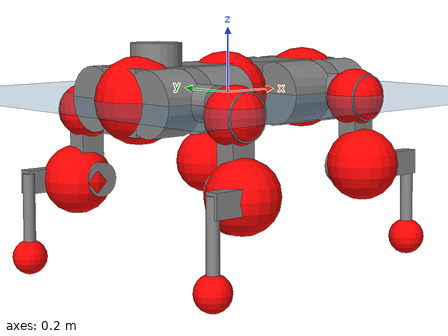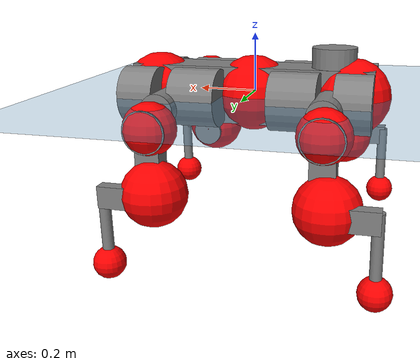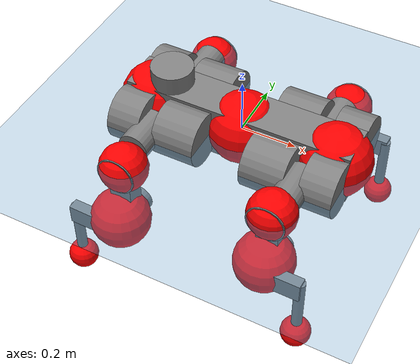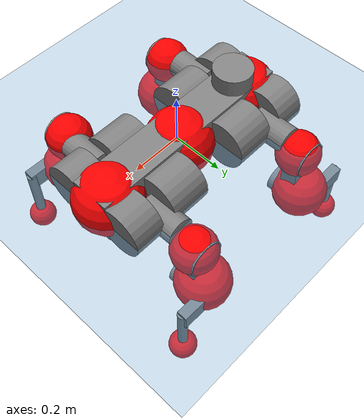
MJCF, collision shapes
<mujoco model="anymal_c">
  <compiler angle="radian" assetdir="assets" balanceinertia="true" inertiafromgeom="false"/>

  <option timestep="0.005" density="1.2" viscosity="2e-05"/>

  <size nkey="1"/>

  <visual>
    <quality shadowsize="8192"/>
    <map shadowclip="0.5"/>
  </visual>

  <default>
    <default class="/">
      <material specular="0" shininess="0.25"/>
      <geom contype="0" conaffinity="0" group="1" solref="-1000 -80"/>
      <site size="0.01 0.005 0.005" group="5"/>
      <general forcelimited="true" forcerange="-80 80" biastype="affine" gainprm="80" biasprm="0 -80 -2"/>
      <default class="anymal_c">
        <joint armature="0.01" damping="0.01" frictionloss="0.1"/>
        <default class="visual">
          <geom type="mesh" group="2"/>
          <default class="visual_zflip"/>
        </default>
        <default class="collision">
          <geom type="cylinder" group="3"/>
          <default class="foot">
            <geom size="0.03 0 0" type="sphere" condim="6" priority="1" friction="0.8 0.02 0.01" solimp="0.015 1 0.03"/>
          </default>
        </default>
      </default>
      <default class="reward_collision_sphere">
        <geom group="5" rgba="1 0 0 1"/>
      </default>
    </default>
  </default>

  <asset>
    <texture type="skybox" colorspace="auto" name="//unnamed_texture_0" builtin="gradient" rgb1="0.95 0.95 0.95" rgb2="0.95 0.95 0.95" width="100" height="600"/>
    <texture type="2d" colorspace="auto" name="texplane" builtin="checker" rgb1="0.345 0.575 0.748" rgb2="0.345 0.575 0.748" markrgb="1 1 1" width="512" height="512"/>
    <texture type="2d" colorspace="linear" name="base" file="base.png"/>
    <texture type="2d" colorspace="linear" name="top_shell" file="top_shell.png"/>
    <texture type="2d" colorspace="linear" name="bottom_shell" file="bottom_shell.png"/>
    <texture type="2d" colorspace="linear" name="remote" file="remote.png"/>
    <texture type="2d" colorspace="linear" name="hatch" file="hatch.png"/>
    <texture type="2d" colorspace="linear" name="handle" file="handle.png"/>
    <texture type="2d" colorspace="linear" name="face" file="face.png"/>
    <texture type="2d" colorspace="linear" name="battery" file="battery.png"/>
    <texture type="2d" colorspace="linear" name="lidar_cage" file="lidar_cage.png"/>
    <texture type="2d" colorspace="linear" name="depth_camera" file="depth_camera.png"/>
    <texture type="2d" colorspace="linear" name="wide_angle_camera" file="wide_angle_camera.png"/>
    <texture type="2d" colorspace="linear" name="lidar" file="lidar.png"/>
    <texture type="2d" colorspace="linear" name="drive" file="drive.png"/>
    <texture type="2d" colorspace="linear" name="hip_l" file="hip_l.png"/>
    <texture type="2d" colorspace="linear" name="shank_l" file="shank_l.png"/>
    <texture type="2d" colorspace="linear" name="foot" file="foot.png"/>
    <texture type="2d" colorspace="linear" name="thigh" file="thigh.png"/>
    <texture type="2d" colorspace="linear" name="shank_r" file="shank_r.png"/>
    <texture type="2d" colorspace="linear" name="hip_r" file="hip_r.png"/>
    <material name="MatPlane" class="/" texture="texplane" texuniform="true" texrepeat="2 2" specular="0.9" shininess="0.5"/>
    <material name="black_plastic" class="/" rgba="0.007 0.007 0.007 1"/>
    <material name="green" class="/" rgba="0.052 0.178 0.033 1"/>
    <material name="red" class="/" rgba="0.178 0.006 0.005 1"/>
    <material name="yellow" class="/" rgba="0.178 0.119 0.006 1"/>
    <material name="lwl" class="/" rgba="0.8 0.8 0.8 1"/>
    <material name="base" class="/" texture="base"/>
    <material name="top_shell" class="/" texture="top_shell"/>
    <material name="bottom_shell" class="/" texture="bottom_shell"/>
    <material name="hip_l" class="/" texture="hip_l"/>
    <material name="thigh" class="/" texture="thigh"/>
    <material name="shank_l" class="/" texture="shank_l"/>
    <material name="foot" class="/" texture="foot"/>
    <material name="hip_r" class="/" texture="hip_r"/>
    <material name="shank" class="/" texture="shank_r"/>
    <material name="hatch" class="/" texture="hatch"/>
    <material name="remote" class="/" texture="remote"/>
    <material name="handle" class="/" texture="handle"/>
    <material name="face" class="/" texture="face"/>
    <material name="depth_camera" class="/" texture="depth_camera"/>
    <material name="wide_angle_camera" class="/" texture="wide_angle_camera"/>
    <material name="battery" class="/" texture="battery"/>
    <material name="lidar_cage" class="/" texture="lidar_cage"/>
    <material name="lidar" class="/" texture="lidar"/>
    <material name="drive" class="/" texture="drive"/>
    <mesh name="base_0" class="/" file="base_0.obj"/>
    <mesh name="base_1" class="/" file="base_1.obj"/>
    <mesh name="base_2" class="/" file="base_2.obj"/>
    <mesh name="base_3" class="/" file="base_3.obj"/>
    <mesh name="base_4" class="/" file="base_4.obj"/>
    <mesh name="base_5" class="/" file="base_5.obj"/>
    <mesh name="top_shell" class="/" file="top_shell.obj"/>
    <mesh name="bottom_shell" class="/" file="bottom_shell.obj"/>
    <mesh name="remote" class="/" file="remote.obj"/>
    <mesh name="handle" class="/" file="handle.obj"/>
    <mesh name="face" class="/" file="face.obj"/>
    <mesh name="wide_angle_camera" class="/" file="wide_angle_camera.obj"/>
    <mesh name="depth_camera" class="/" file="depth_camera.obj"/>
    <mesh name="battery" class="/" file="battery.obj"/>
    <mesh name="lidar_cage" class="/" file="lidar_cage.obj"/>
    <mesh name="lidar" class="/" file="lidar.obj"/>
    <mesh name="drive" class="/" file="drive.obj"/>
    <mesh name="hip_l" class="/" file="hip_l.obj"/>
    <mesh name="thigh" class="/" file="thigh.obj"/>
    <mesh name="shank_l" class="/" file="shank_l.obj"/>
    <mesh name="foot" class="/" file="foot.obj"/>
    <mesh name="hip_r" class="/" file="hip_r.obj"/>
    <mesh name="hatch" class="/" file="hatch.obj"/>
    <mesh name="shank_r" class="/" file="shank_r.obj"/>
  </asset>

  <worldbody>
    <geom name="floor" class="/" size="100 100 0.125" type="plane" group="0" material="MatPlane"/>
    <light name="toplight_shadow" class="/" pos="0 0 5" dir="0.0990148 0.0990148 -0.990148" type="directional" ambient="0.04 0.04 0.04" diffuse="0.55 0.55 0.55" specular="0.12 0.12 0.12"/>
    <light name="toplight_fill" class="/" pos="0 0 5" dir="0.0990148 0.0990148 -0.990148" type="directional" castshadow="false" ambient="0.04 0.04 0.04" diffuse="0.3 0.3 0.3" specular="0.08 0.08 0.08"/>
    <body name="trunk" childclass="anymal_c" pos="0.00139324 0.0139007 -0.0042071" quat="1 -0.000142119 -0.000153139 -6.17188e-05">
      <inertial pos="-0.00581997 0.0146546 0.0406967" quat="0.547743 0.539023 0.440496 0.464107" mass="24.6682" diaginertia="0.185242 11.7162 0.0510056"/>
      <joint name="//unnamed_joint_0" type="free" armature="0" damping="0" frictionloss="0"/>
      <geom name="//unnamed_geom_1" class="visual" material="green" mesh="base_0"/>
      <geom name="//unnamed_geom_2" class="visual" material="yellow" mesh="base_1"/>
      <geom name="//unnamed_geom_3" class="visual" material="red" mesh="base_2"/>
      <geom name="//unnamed_geom_4" class="visual" material="black_plastic" mesh="base_3"/>
      <geom name="//unnamed_geom_5" class="visual" material="lwl" mesh="base_4"/>
      <geom name="//unnamed_geom_6" class="visual" material="base" mesh="base_5"/>
      <geom name="trunk_1" class="collision" size="0.314431 0.0758972 0.0975821" type="box"/>
      <geom name="trunk_2" class="collision" size="0.0975821 0.0786078" pos="0.165986 0.121775 0" quat="0.707107 0 0.707107 0"/>
      <geom name="trunk_3" class="collision" size="0.0975821 0.0786078" pos="-0.165986 0.121775 0" quat="0.707107 0 0.707107 0"/>
      <geom name="trunk_4" class="collision" size="0.0975821 0.0786078" pos="0.165986 -0.121775 0" quat="0.707107 0 0.707107 0"/>
      <geom name="trunk_5" class="collision" size="0.0975821 0.0786078" pos="-0.165986 -0.121775 0" quat="0.707107 0 0.707107 0"/>
      <geom name="//unnamed_geom_12" class="visual" material="top_shell" mesh="top_shell"/>
      <geom name="//unnamed_geom_13" class="visual" material="bottom_shell" mesh="bottom_shell"/>
      <geom name="//unnamed_geom_14" class="visual" material="remote" mesh="remote"/>
      <geom name="//unnamed_geom_15" class="visual" material="handle" mesh="handle"/>
      <geom name="//unnamed_geom_16" class="visual" pos="0.316328 0 0" quat="1 0 0 0" material="face" mesh="face"/>
      <geom name="trunk_6" class="collision" size="0.0596335 0.0758972 0.0975821" pos="0.358301 0 0" type="box"/>
      <geom name="//unnamed_geom_18" class="collision" size="0.0975821 0.0596335" pos="0.358301 0.121775 0" quat="0.707107 0 0.707107 0"/>
      <geom name="//unnamed_geom_19" class="collision" size="0.0975821 0.0596335" pos="0.358301 -0.121775 0" quat="0.707107 0 0.707107 0"/>
      <geom name="//unnamed_geom_20" class="visual" pos="0.35231 0 -0.0217977" quat="0.965926 0 0.258819 0" material="depth_camera" mesh="depth_camera"/>
      <geom name="//unnamed_geom_21" class="visual" pos="0.391499 0 0.0112266" material="wide_angle_camera" mesh="wide_angle_camera"/>
      <geom name="//unnamed_geom_22" class="visual_zflip" pos="-0.316328 0 0" quat="0 0 0 1" material="face" mesh="face"/>
      <geom name="trunk_7" class="collision" size="0.0596335 0.0758972 0.0975821" pos="-0.358301 0 0" quat="0 0 0 1" type="box"/>
      <geom name="//unnamed_geom_24" class="collision" size="0.0975821 0.0596335" pos="-0.358301 -0.121775 0" quat="0 -0.707107 0 0.707107"/>
      <geom name="//unnamed_geom_25" class="collision" size="0.0975821 0.0596335" pos="-0.358301 0.121775 0" quat="0 -0.707107 0 0.707107"/>
      <geom name="//unnamed_geom_26" class="visual" pos="-0.35231 0 -0.0217977" quat="0 -0.258819 0 0.965926" material="depth_camera" mesh="depth_camera"/>
      <geom name="//unnamed_geom_27" class="visual_zflip" pos="-0.391499 0 0.0112266" quat="0 0 0 1" material="wide_angle_camera" mesh="wide_angle_camera"/>
      <geom name="//unnamed_geom_28" class="visual" material="battery" mesh="battery"/>
      <geom name="//unnamed_geom_29" class="visual" pos="0 0.145826 0.0218861" quat="0.683013 -0.183013 0.183013 0.683013" material="depth_camera" mesh="depth_camera"/>
      <geom name="//unnamed_geom_30" class="visual" pos="0 -0.145826 0.0218861" quat="0.683013 0.183013 0.183013 -0.683013" material="depth_camera" mesh="depth_camera"/>
      <geom name="//unnamed_geom_31" class="visual" pos="-0.277789 0 0.0551204" quat="1 0 0 0" material="lidar_cage" mesh="lidar_cage"/>
      <geom name="trunk_8" class="collision" size="0.0758972 0.0650547" pos="-0.277789 0 0.100117"/>
      <geom name="//unnamed_geom_33" class="visual" pos="-0.277789 0.000383636 0.106641" quat="0.707107 0 0 -0.707107" material="lidar" mesh="lidar"/>
      <geom name="//unnamed_geom_34" class="visual" pos="0.22887 0.180571 1.70725e-08" quat="0.258819 0.965926 0 0" material="drive" mesh="drive"/>
      <geom name="//unnamed_geom_35" class="visual" pos="0.22887 -0.180571 -1.70725e-08" quat="0.258819 -0.965926 0 0" material="drive" mesh="drive"/>
      <geom name="//unnamed_geom_36" class="visual" pos="-0.22887 0.180571 -1.70725e-08" quat="0 0 0.965926 -0.258819" material="drive" mesh="drive"/>
      <geom name="//unnamed_geom_37" class="visual" pos="-0.22887 -0.180571 1.70725e-08" quat="0 0 -0.965926 -0.258819" material="drive" mesh="drive"/>
      <geom name="//unnamed_geom_38" class="visual" pos="0.088526 0 0.0547454" quat="1 0 0 0" material="hatch" mesh="hatch"/>
      <geom name="//unnamed_geom_39" class="reward_collision_sphere" size="0.130109"/>
      <geom name="//unnamed_geom_40" class="reward_collision_sphere" size="0.130109" pos="0.34342 0 0"/>
      <geom name="//unnamed_geom_41" class="reward_collision_sphere" size="0.130109" pos="-0.34342 0 0"/>
      <site name="imu" pos="0.122056 -0.0413485 0.10413" size="0.0108425"/>
      <camera name="track" pos="0 -3.47929 0" quat="0.707107 0.707107 0 0" mode="trackcom"/>
      <camera name="ego_camera" pos="0.34342 0 -0.0299975" quat="-0.5 -0.5 0.5 0.5"/>
      <body name="LF_HIP" pos="0.216535 0.162801 -0.0158397" quat="0.256526 0.966514 0.00105217 -0.00668795">
        <inertial pos="0.0485878 -0.0263492 -0.016575" quat="-0.13749 0.694895 -0.132983 0.693205" mass="4.29296" diaginertia="0.00147458 0.0851904 0.000741827"/>
        <joint name="LF_HAA" pos="0 0 0" axis="0.999978 0.00196369 -0.00629406" range="-1.0888 0.275414" armature="0.013365" damping="0.0787696" frictionloss="0.0407939"/>
        <geom name="//unnamed_geom_42" class="visual" pos="0 0.0010043 -0.000164956" quat="0.258819 -0.965926 0 0" material="hip_l" mesh="hip_l"/>
        <geom name="//unnamed_geom_43" class="visual" pos="0.045713 -0.0678964 -0.0318795" quat="0.183013 -0.683013 0.683013 0.183013" material="drive" mesh="drive"/>
        <geom name="//unnamed_geom_44" class="collision" size="0.0542123 0.0758972" pos="0.045713 -0.0208058 -0.00517832" quat="-0.353553 -0.612372 0.612372 -0.353553"/>
        <body name="LF_THIGH" pos="0.044133 -0.144477 -0.0252841" quat="0.180321 -0.685632 0.679932 0.187312">
          <inertial pos="0.010551 -0.0115533 -0.189629" quat="0.981614 -0.0174278 -0.118623 0.148523" mass="3.89878" diaginertia="0.0070925 0.452943 0.00104321"/>
          <joint name="LF_HFE" pos="0 0 0" axis="0.997495 -0.0157748 0.0689573" range="-3.34083 2.80904" armature="0.002984" damping="0" frictionloss="0.0611402"/>
          <geom name="//unnamed_geom_45" class="visual" pos="-0.0194283 -3.06144e-05 0" quat="0.707107 0 0 -0.707107" material="thigh" mesh="thigh"/>
          <geom name="//unnamed_geom_46" class="collision" size="0.0704759 0.0433698" pos="0.0305262 0 0" quat="0.5 0.5 -0.5 -0.5"/>
          <geom name="//unnamed_geom_47" class="collision" size="0.0406592 0.0325274 0.153219" pos="0.0228947 0 -0.105977" quat="0.707107 0 0 -0.707107" type="box"/>
          <geom name="//unnamed_geom_48" class="visual" pos="0.0765445 0 -0.213732" quat="1 0 0 0" material="drive" mesh="drive"/>
          <geom name="//unnamed_geom_49" class="collision" size="0.0542123 0.0758972" pos="0.0231236 0 -0.213732" quat="0.707107 0 0.707107 0"/>
          <geom name="//unnamed_geom_50" class="reward_collision_sphere" size="0.0867396" pos="0.0190789 0 0"/>
          <body name="LF_SHANK" pos="0.0845081 0.0163906 -0.205016" quat="0.999986 0.0025332 0.00283665 -0.00378155">
            <inertial pos="-0.0080293 -0.106447 -0.042795" quat="0.993621 -0.110562 -0.00311969 -0.0220097" mass="0.780945" diaginertia="0.00302373 0.113898 0.000316734"/>
            <joint name="LF_KFE" pos="0 0 0" axis="0.999937 0.00367515 -0.0106209" range="-2.79106 3.10268" armature="0.0169296" damping="0.0196521" frictionloss="0.112611"/>
            <geom name="//unnamed_geom_51" class="visual" pos="-0.00633513 -0.0337793 0" quat="0.707107 0 0 -0.707107" material="shank_l" mesh="shank_l"/>
            <geom name="LF_kfe_act" class="collision" size="0.0650547 0.0216849" pos="0.0152631 0 0" quat="0.5 0.5 -0.5 -0.5"/>
            <geom name="//unnamed_geom_53" class="collision" size="0.062343 0.0365933 0.0206007" pos="0.0152631 -0.100028 0" quat="0.5 0.5 -0.5 -0.5" type="box"/>
            <geom name="//unnamed_geom_54" class="visual" pos="0.00996071 -0.163887 -0.253456" quat="0.382683 0 0 -0.92388" material="foot" mesh="foot"/>
            <geom name="LF_calf" class="collision" size="0.0189743 0.153152" pos="0.00995918 -0.153002 -0.126728" quat="0.707107 0 0 -0.707107"/>
            <geom name="LF_foot" class="foot" size="0.033788" pos="0.00995918 -0.153002 -0.236583" quat="0.707107 0 0 -0.707107"/>
            <geom name="//unnamed_geom_57" class="reward_collision_sphere" size="0.108425" pos="-0.0381578 0 0"/>
            <geom name="//unnamed_geom_58" class="reward_collision_sphere" size="0.0542123" pos="0.00995918 -0.153002 -0.236583"/>
            <site name="LF_foot" class="foot" pos="0.00995918 -0.153002 -0.236583" quat="0.707107 0 0 -0.707107" size="0.0108425"/>
          </body>
        </body>
      </body>
      <body name="RF_HIP" pos="0.226939 -0.170861 0.00934807" quat="0.258804 -0.96593 -0.000214013 0.00026138">
        <inertial pos="0.0519022 0.0200438 -0.0129646" quat="0.145532 0.67426 0.141634 0.710024" mass="4.01326" diaginertia="0.00157958 0.091641 0.000608732"/>
        <joint name="RF_HAA" pos="0 0 0" axis="0.998118 -0.0504612 -0.0348552" stiffness="0.0414013" range="-0.463413 0.776543" armature="0.00714896" damping="0" frictionloss="0.0628733"/>
        <geom name="//unnamed_geom_59" class="visual" pos="0 -0.00100429 -0.000164955" quat="0.258819 0.965926 0 0" material="hip_r" mesh="hip_r"/>
        <geom name="//unnamed_geom_60" class="visual" pos="0.045713 0.0678964 -0.0318795" quat="0.183013 0.683013 0.683013 -0.183013" material="drive" mesh="drive"/>
        <geom name="//unnamed_geom_61" class="collision" size="0.0542123 0.0758972" pos="0.045713 0.0208058 -0.00517832" quat="-0.353553 0.612372 0.612372 0.353553"/>
        <body name="RF_THIGH" pos="0.0293365 0.108335 -0.0426687" quat="0.185696 0.679901 0.6847 -0.185572">
          <inertial pos="0.033801 0.0180604 -0.180678" quat="0.997953 0.00135317 -0.0495495 0.0404203" mass="2.67534" diaginertia="0.00607033 0.384225 0.000899918"/>
          <joint name="RF_HFE" pos="0 0 0" axis="0.999985 -0.00340837 0.00438478" stiffness="0.0428666" range="-2.80516 3.15664" armature="0.00840498" damping="0" frictionloss="0.111514"/>
          <geom name="//unnamed_geom_62" class="visual" pos="-0.0194283 -3.06144e-05 0" quat="0.707107 0 0 -0.707107" material="thigh" mesh="thigh"/>
          <geom name="//unnamed_geom_63" class="collision" size="0.0704759 0.0433698" pos="0.0305262 0 0" quat="0.5 0.5 0.5 0.5"/>
          <geom name="//unnamed_geom_64" class="collision" size="0.0406592 0.0325274 0.153219" pos="0.0228947 0 -0.105977" quat="0.707107 0 0 0.707107" type="box"/>
          <geom name="//unnamed_geom_65" class="visual" pos="0.0765445 0 -0.213732" quat="1 0 0 0" material="drive" mesh="drive"/>
          <geom name="//unnamed_geom_66" class="collision" size="0.0542123 0.0758972" pos="0.0231236 0 -0.213732" quat="0.707107 0 0.707107 0"/>
          <geom name="//unnamed_geom_67" class="reward_collision_sphere" size="0.0867396" pos="0.0190789 0 0"/>
          <body name="RF_SHANK" pos="0.0934945 -0.00376471 -0.202016" quat="0.999971 -0.00154905 -0.00721768 -0.00191004">
            <inertial pos="-0.00456576 0.105534 -0.0731821" quat="0.996119 0.0754655 -0.0425108 0.0156634" mass="0.712569" diaginertia="0.00242006 0.145637 0.000239575"/>
            <joint name="RF_KFE" pos="0 0 0" axis="0.996031 -0.032426 -0.0828909" stiffness="0.0466715" range="-3.24641 3.10949" armature="0.00261695" damping="0" frictionloss="0.190353"/>
            <geom name="//unnamed_geom_68" class="visual" pos="-0.0063351 0.0337792 0" quat="0.707107 0 0 0.707107" material="shank" mesh="shank_r"/>
            <geom name="RF_kfe_act" class="collision" size="0.0650547 0.0216849" pos="0.0152631 0 0" quat="0.5 0.5 0.5 0.5"/>
            <geom name="//unnamed_geom_70" class="collision" size="0.062343 0.0365933 0.0206007" pos="0.0152631 0.100028 0" quat="0.5 0.5 0.5 0.5" type="box"/>
            <geom name="//unnamed_geom_71" class="visual" pos="0.00995764 0.163887 -0.253456" quat="0.382683 0 0 0.92388" material="foot" mesh="foot"/>
            <geom name="RF_calf" class="collision" size="0.0189743 0.153152" pos="0.00995918 0.153002 -0.126728" quat="0.707107 0 0 0.707107"/>
            <geom name="RF_foot" class="foot" size="0.0425241" pos="0.00995918 0.153002 -0.236583" quat="0.707107 0 0 0.707107"/>
            <geom name="//unnamed_geom_74" class="reward_collision_sphere" size="0.108425" pos="-0.0381578 0 0"/>
            <geom name="//unnamed_geom_75" class="reward_collision_sphere" size="0.0542123" pos="0.00995918 0.153002 -0.236583"/>
            <site name="RF_foot" class="foot" pos="0.00995918 0.153002 -0.236583" quat="0.707107 0 0 0.707107" size="0.0108425"/>
          </body>
        </body>
      </body>
      <body name="LH_HIP" pos="-0.233286 0.185915 -0.00406968" quat="-0.00143301 -0.00156346 0.964993 -0.262267">
        <inertial pos="0.0416875 0.0412225 -0.0171157" quat="0.111122 0.669033 0.154053 0.71855" mass="2.83262" diaginertia="0.00132224 0.0687199 0.000703166"/>
        <joint name="LH_HAA" pos="0 0 0" axis="0.999344 0.00837846 0.0352456" stiffness="0.0346608" range="-0.622987 0.904823" armature="0.00978211" damping="0" frictionloss="0.0754848"/>
        <geom name="//unnamed_geom_76" class="visual" pos="0 -0.00100429 -0.000164955" quat="-0.258819 -0.965926 0 0" material="hip_r" mesh="hip_r"/>
        <geom name="//unnamed_geom_77" class="visual" pos="0.045713 0.0678964 -0.0318795" quat="0.183013 0.683013 0.683013 -0.183013" material="drive" mesh="drive"/>
        <geom name="//unnamed_geom_78" class="collision" size="0.0542123 0.0758972" pos="0.045713 0.0208058 -0.00517832" quat="-0.353553 0.612372 0.612372 0.353553"/>
        <body name="LH_THIGH" pos="0.0575543 0.125886 -0.0146368" quat="0.179862 0.683261 0.683518 -0.183324">
          <inertial pos="0.0221856 0.00437044 -0.167327" quat="0.995893 0.0357604 -0.0470839 0.0685667" mass="2.68886" diaginertia="0.00760299 0.37493 0.000931117"/>
          <joint name="LH_HFE" pos="0 0 0" axis="0.9999 -0.00706518 -0.0122332" stiffness="0.018439" range="-2.86339 2.90299" armature="0.0151999" damping="0.0843527" frictionloss="0.131752"/>
          <geom name="//unnamed_geom_79" class="visual" pos="-0.0194283 -3.06144e-05 0" quat="0.707107 0 0 -0.707107" material="thigh" mesh="thigh"/>
          <geom name="//unnamed_geom_80" class="collision" size="0.0704759 0.0433698" pos="0.0305262 0 0" quat="0.5 0.5 -0.5 -0.5"/>
          <geom name="//unnamed_geom_81" class="collision" size="0.0406592 0.0325274 0.153219" pos="0.0228947 0 -0.105977" quat="0.707107 0 0 -0.707107" type="box"/>
          <geom name="//unnamed_geom_82" class="visual" pos="0.0765445 0 -0.213732" quat="1 0 0 0" material="drive" mesh="drive"/>
          <geom name="//unnamed_geom_83" class="collision" size="0.0542123 0.0758972" pos="0.0231236 0 -0.213732" quat="0.707107 0 0.707107 0"/>
          <geom name="//unnamed_geom_84" class="reward_collision_sphere" size="0.0867396" pos="0.0190789 0 0"/>
          <body name="LH_SHANK" pos="0.0880357 0.0182085 -0.219472" quat="0.999994 -0.000116604 -0.00310145 0.00142266">
            <inertial pos="0.00834486 0.105281 -0.0553572" quat="0.992863 0.113261 0.0127321 0.035105" mass="0.547089" diaginertia="0.00181634 0.131247 0.000225152"/>
            <joint name="LH_KFE" pos="0 0 0" axis="0.998041 0.0445944 -0.0438876" range="-3.49618 3.41357" armature="0.00962044" damping="0.0550194" frictionloss="0.120801"/>
            <geom name="//unnamed_geom_85" class="visual" pos="-0.0063351 0.0337792 0" quat="-0.707107 0 0 -0.707107" material="shank" mesh="shank_r"/>
            <geom name="LH_kfe_act" class="collision" size="0.0650547 0.0216849" pos="0.0152631 0 0" quat="0.5 0.5 -0.5 -0.5"/>
            <geom name="//unnamed_geom_87" class="collision" size="0.062343 0.0365933 0.0206007" pos="0.0152631 0.100028 0" quat="0.5 0.5 -0.5 -0.5" type="box"/>
            <geom name="//unnamed_geom_88" class="visual" pos="0.00995764 0.163887 -0.253456" quat="-0.382683 0 0 -0.92388" material="foot" mesh="foot"/>
            <geom name="LH_calf" class="collision" size="0.0189743 0.153152" pos="0.00995918 0.153002 -0.126728" quat="0.707107 0 0 -0.707107"/>
            <geom name="LH_foot" class="foot" size="0.0218226" pos="0.00995918 0.153002 -0.236583" quat="0.707107 0 0 -0.707107"/>
            <geom name="//unnamed_geom_91" class="reward_collision_sphere" size="0.108425" pos="-0.0381578 0 0"/>
            <geom name="//unnamed_geom_92" class="reward_collision_sphere" size="0.0542123" pos="0.00995918 0.153002 -0.236583"/>
            <site name="LH_foot" class="foot" pos="0.00995918 0.153002 -0.236583" quat="0.707107 0 0 -0.707107" size="0.0108425"/>
          </body>
        </body>
      </body>
      <body name="RH_HIP" pos="-0.23679 -0.176045 0.00718532" quat="0.00242305 -0.00110387 -0.967741 -0.251932">
        <inertial pos="0.0360256 -0.0416442 0.00607286" quat="-0.122127 0.730172 -0.148644 0.655621" mass="2.92409" diaginertia="0.00108147 0.0600018 0.000533299"/>
        <joint name="RH_HAA" pos="0 0 0" axis="0.99697 -0.0776132 0.00513448" range="-0.621558 0.816682" armature="0.0110957" damping="0.0463591" frictionloss="0.0838178"/>
        <geom name="//unnamed_geom_93" class="visual" pos="0 0.0010043 -0.000164956" quat="-0.258819 0.965926 0 0" material="hip_l" mesh="hip_l"/>
        <geom name="//unnamed_geom_94" class="visual" pos="0.045713 -0.0678964 -0.0318795" quat="-0.183013 0.683013 -0.683013 -0.183013" material="drive" mesh="drive"/>
        <geom name="//unnamed_geom_95" class="collision" size="0.0542123 0.0758972" pos="0.045713 -0.0208058 -0.00517832" quat="0.353553 0.612372 -0.612372 0.353553"/>
        <body name="RH_THIGH" pos="0.043754 -0.139204 -0.0404634" quat="-0.186571 0.687481 -0.678335 -0.180061">
          <inertial pos="0.0231815 0.0161517 -0.195744" quat="0.995946 0.00149322 -0.0720101 0.053893" mass="4.29669" diaginertia="0.00850128 0.525684 0.0011438"/>
          <joint name="RH_HFE" pos="0 0 0" axis="0.99655 0.0285071 0.0779432" stiffness="0.04328" range="-3.25177 2.91905" armature="0.0124612" damping="0" frictionloss="0.0767638"/>
          <geom name="//unnamed_geom_96" class="visual" pos="-0.0194283 -3.06144e-05 0" quat="0.707107 0 0 -0.707107" material="thigh" mesh="thigh"/>
          <geom name="//unnamed_geom_97" class="collision" size="0.0704759 0.0433698" pos="0.0305262 0 0" quat="0.5 0.5 0.5 0.5"/>
          <geom name="//unnamed_geom_98" class="collision" size="0.0406592 0.0325274 0.153219" pos="0.0228947 0 -0.105977" quat="0.707107 0 0 0.707107" type="box"/>
          <geom name="//unnamed_geom_99" class="visual" pos="0.0765445 0 -0.213732" quat="1 0 0 0" material="drive" mesh="drive"/>
          <geom name="//unnamed_geom_100" class="collision" size="0.0542123 0.0758972" pos="0.0231236 0 -0.213732" quat="0.707107 0 0.707107 0"/>
          <geom name="//unnamed_geom_101" class="reward_collision_sphere" size="0.0867396" pos="0.0190789 0 0"/>
          <body name="RH_SHANK" pos="0.0954949 -0.00674624 -0.219441" quat="0.999988 -0.00282849 0.00365749 -0.00178738">
            <inertial pos="-0.0143103 -0.106963 -0.0529613" quat="0.98896 -0.147872 0.00908152 0.00311964" mass="0.764013" diaginertia="0.00204345 0.157037 0.000238413"/>
            <joint name="RH_KFE" pos="0 0 0" axis="0.996513 -0.0623419 0.0554619" stiffness="0.0526075" range="-2.8406 2.80998" armature="0.0193414" damping="0.0130431" frictionloss="0.0976117"/>
            <geom name="//unnamed_geom_102" class="visual" pos="-0.00633513 -0.0337793 0" quat="0.707107 0 0 -0.707107" material="shank_l" mesh="shank_l"/>
            <geom name="RH_kfe_act" class="collision" size="0.0650547 0.0216849" pos="0.0152631 0 0" quat="0.5 0.5 0.5 0.5"/>
            <geom name="//unnamed_geom_104" class="collision" size="0.062343 0.0365933 0.0206007" pos="0.0152631 -0.100028 0" quat="0.5 0.5 0.5 0.5" type="box"/>
            <geom name="//unnamed_geom_105" class="visual" pos="0.00996071 -0.163887 -0.253456" quat="0.382683 0 0 -0.92388" material="foot" mesh="foot"/>
            <geom name="RH_calf" class="collision" size="0.0189743 0.153152" pos="0.00995918 -0.153002 -0.126728" quat="0.707107 0 0 0.707107"/>
            <geom name="RH_foot" class="foot" size="0.0461256" pos="0.00995918 -0.153002 -0.236583" quat="0.707107 0 0 0.707107"/>
            <geom name="//unnamed_geom_108" class="reward_collision_sphere" size="0.108425" pos="-0.0381578 0 0"/>
            <geom name="//unnamed_geom_109" class="reward_collision_sphere" size="0.0542123" pos="0.00995918 -0.153002 -0.236583"/>
            <site name="RH_foot" class="foot" pos="0.00995918 -0.153002 -0.236583" quat="0.707107 0 0 0.707107" size="0.0108425"/>
          </body>
        </body>
      </body>
    </body>
  </worldbody>

  <contact>
    <pair class="/" geom1="floor" geom2="LF_foot" name="//unnamed_contact_0"/>
    <pair class="/" geom1="floor" geom2="RF_foot" name="//unnamed_contact_1"/>
    <pair class="/" geom1="floor" geom2="LH_foot" name="//unnamed_contact_2"/>
    <pair class="/" geom1="floor" geom2="RH_foot" name="//unnamed_contact_3"/>
  </contact>

  <actuator>
    <general name="LF_HAA" class="/" joint="LF_HAA" forcerange="-27.1719 27.1719" gainprm="50.6901" biasprm="0 -50.6901 -1.69597"/>
    <general name="LF_HFE" class="/" joint="LF_HFE" forcerange="-127.519 127.519" gainprm="50.6901" biasprm="0 -50.6901 -1.69597"/>
    <general name="LF_KFE" class="/" joint="LF_KFE" forcerange="-112.076 112.076" gainprm="50.6901" biasprm="0 -50.6901 -1.69597"/>
    <general name="RF_HAA" class="/" joint="RF_HAA" forcerange="-32.6274 32.6274" gainprm="50.6901" biasprm="0 -50.6901 -1.69597"/>
    <general name="RF_HFE" class="/" joint="RF_HFE" forcerange="-32.5125 32.5125" gainprm="50.6901" biasprm="0 -50.6901 -1.69597"/>
    <general name="RF_KFE" class="/" joint="RF_KFE" forcerange="-46.6031 46.6031" gainprm="50.6901" biasprm="0 -50.6901 -1.69597"/>
    <general name="LH_HAA" class="/" joint="LH_HAA" forcerange="-108.508 108.508" gainprm="50.6901" biasprm="0 -50.6901 -1.69597"/>
    <general name="LH_HFE" class="/" joint="LH_HFE" forcerange="-70.9057 70.9057" gainprm="50.6901" biasprm="0 -50.6901 -1.69597"/>
    <general name="LH_KFE" class="/" joint="LH_KFE" forcerange="-123.868 123.868" gainprm="50.6901" biasprm="0 -50.6901 -1.69597"/>
    <general name="RH_HAA" class="/" joint="RH_HAA" forcerange="-143.465 143.465" gainprm="50.6901" biasprm="0 -50.6901 -1.69597"/>
    <general name="RH_HFE" class="/" joint="RH_HFE" forcerange="-103.224 103.224" gainprm="50.6901" biasprm="0 -50.6901 -1.69597"/>
    <general name="RH_KFE" class="/" joint="RH_KFE" forcerange="-86.4719 86.4719" gainprm="50.6901" biasprm="0 -50.6901 -1.69597"/>
  </actuator>

  <sensor>
    <gyro site="imu" name="imu_angular_velocity"/>
    <velocimeter site="imu" name="imu_linear_velocity"/>
    <framelinvel objtype="site" objname="LF_foot" name="LF_foot_global_linear_velocity"/>
    <framelinvel objtype="site" objname="RF_foot" name="RF_foot_global_linear_velocity"/>
    <framelinvel objtype="site" objname="LH_foot" name="LH_foot_global_linear_velocity"/>
    <framelinvel objtype="site" objname="RH_foot" name="RH_foot_global_linear_velocity"/>
  </sensor>

  <keyframe>
    <key name="home" qpos="0 0 0.55 1 0 0 0 0 0.4 -0.8 0 -0.4 0.8 0 -0.4 0.8 0 0.4 -0.8"/>
  </keyframe>
</mujoco>
